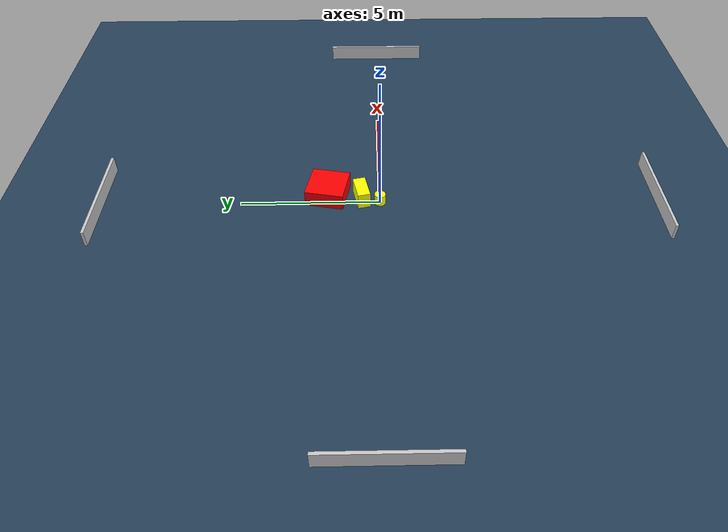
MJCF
<?xml version="1.0" ?>
<mujoco model="generated_environment">
  <option timestep="0.01" integrator="RK4" cone="elliptic"/>
  <default>
    <geom density="1"/>
  </default>
  <asset>
    <texture builtin="gradient" height="3072" name="skybox" rgb1="0.3 0.5 0.7" rgb2="0 0 0" type="skybox" width="512"/>
    <texture builtin="checker" height="300" name="groundplane" rgb1="0.2 0.3 0.4" rgb2="0.1 0.2 0.3" type="2d" width="300"/>
    <material name="groundplane" reflectance="0.2" texrepeat="5 5" texture="groundplane"/>
  </asset>
  <worldbody>
    <light dir="0 0 -1" directional="true" pos="0 0 1.5"/>
    <geom condim="3" friction="0.5 0.005 0.001" material="groundplane" name="floor" pos="0 0 0" size="0 0 0.05" type="plane"/>
    <body name="walls">
      <geom name="wall_1" condim="4" pos="-10.0 0.0 0.3" rgba="0.800000011920929 0.800000011920929 0.800000011920929 1.0" size="0.05 2.0 0.3" type="box"/>
      <geom name="wall_2" condim="4" pos="10.0 0.0 0.3" rgba="0.800000011920929 0.800000011920929 0.800000011920929 1.0" size="0.05 2.0 0.3" type="box"/>
      <geom name="wall_3" condim="4" pos="0.0 -10.0 0.3" rgba="0.800000011920929 0.800000011920929 0.800000011920929 1.0" size="2.0 0.05 0.3" type="box"/>
      <geom name="wall_4" condim="4" pos="0.0 10.0 0.3" rgba="0.800000011920929 0.800000011920929 0.800000011920929 1.0" size="2.0 0.05 0.3" type="box"/>
    </body>
    <body name="robot">
      <joint name="joint_x" type="slide" pos="0 0 0" axis="1 0 0"/>
      <joint name="joint_y" type="slide" pos="0 0 0" axis="0 1 0"/>
      <geom name="robot" type="cylinder" pos="0.0 0.0 0.2" size="0.2 0.2 0.0" mass="5.0" friction="1.0 0.005 0.0001" condim="4" rgba="1.0 1.0 0.0 1.0"/>
    </body>
    <body name="obstacle_1_movable">
      <geom name="obstacle_1_movable" condim="4" pos="0.20317991782969774 0.6645962521303593 0.3" euler="0 0 12.267168860678787" friction="0.0 0.005 0.001" rgba="1.0 1.0 0.0 1.0" size="0.4698492875828928 0.22606948520167464 0.3" type="box" mass="0.1"/>
      <joint type="free"/>
    </body>
    <body name="obstacle_2_static">
      <geom name="obstacle_2_static" condim="4" pos="0.44509619679694445 1.8859144122329266 0.3" euler="0 0 259.02373082176075" friction="0.0 0.005 0.001" rgba="1.0 0.0 0.0 1.0" size="0.6908566312114405 0.671604377963104 0.3" type="box"/>
    </body>
  </worldbody>
  <actuator>
    <motor name="actuator_x" joint="joint_x" gear="1" ctrlrange="-1 1"/>
    <motor name="actuator_y" joint="joint_y" gear="1" ctrlrange="-1 1"/>
  </actuator>
</mujoco>
